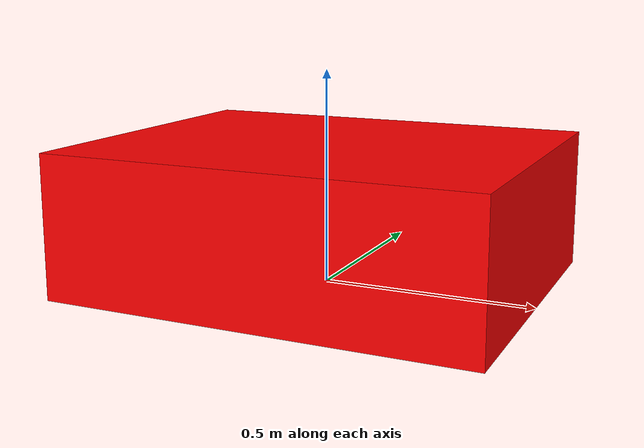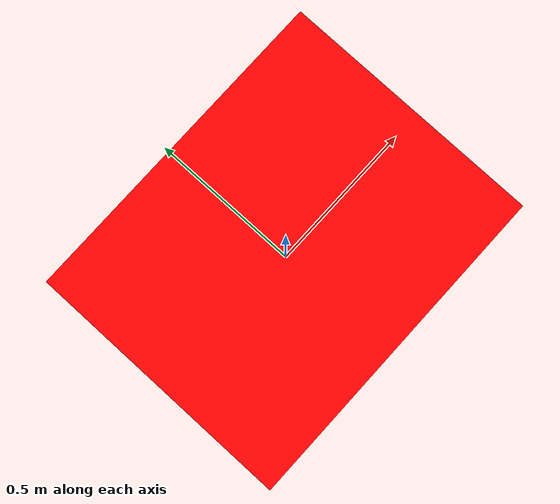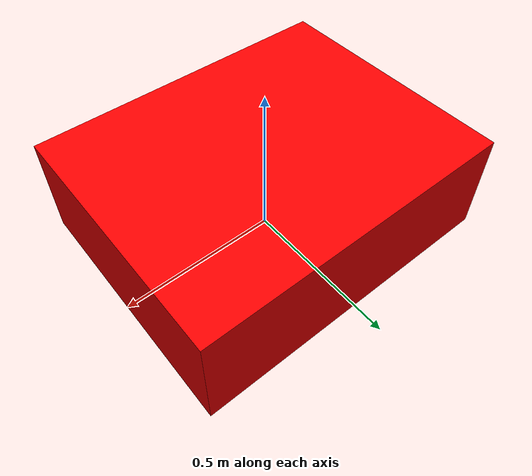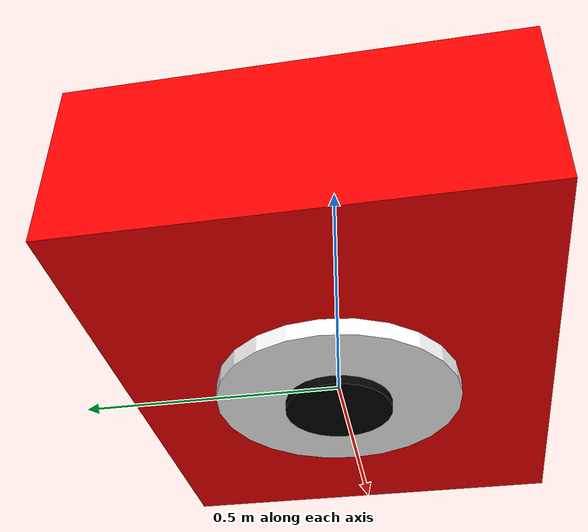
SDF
<?xml version="1.6"?>
<sdf version="1.6">
  <model name="justbaked">
    <link name="base_link">
      <!-- ...existing code... -->
    </link>

    <!-- Chassis -->
    <link name="chassis">
      <visual name="chassis_visual">
        <pose>0 0 0.16666665 0 0 0</pose>
        <geometry>
          <box>
            <size>1.0 0.8 0.3333333</size>
          </box>
        </geometry>
        <material>
          <ambient>1.0 0.0 0.0 0.9</ambient>
          <diffuse>1.0 0.0 0.0 0.9</diffuse>
        </material>
      </visual>
      <collision name="chassis_collision">
        <pose>0 0 0.05 0 0 0</pose>
        <geometry>
          <box>
            <size>1.0 1.0 0.3333333</size>
          </box>
        </geometry>
      </collision>
      <inertial>
        <pose>0 0 0.16666665 0 0 0</pose>
        <mass>10.0</mass>
        <inertia>
          <ixx>0.625924</ixx>
          <ixy>0</ixy>
          <ixz>0</ixz>
          <iyy>1.36667</iyy>
          <iyz>0</iyz>
          <izz>0.92592</izz>
        </inertia>
      </inertial>
    </link>
    <joint name="chassis_joint" type="fixed">
      <parent>base_link</parent>
      <child>chassis</child>
      <pose>-0.1 0 0.1 0 0 0</pose>
    </joint>

    <!-- Front left wheel -->
    <link name="front_left_wheel">
      <visual name="front_left_wheel_visual">
        <pose>0 0 0 0 0 0</pose>
        <geometry>
          <cylinder>
            <radius>0.1</radius>
            <length>0.1</length>
          </cylinder>
        </geometry>
        <material>
          <ambient>0.0 0.0 0.0 1.0</ambient>
          <diffuse>0.0 0.0 0.0 1.0</diffuse>
        </material>
      </visual>
      <inertial>
        <pose>0 0 0 0 0 0</pose>
        <mass>1.0</mass>
        <inertia>
          <ixx>0.003333333</ixx>
          <ixy>0</ixy>
          <ixz>0</ixz>
          <iyy>0.003333333</iyy>
          <iyz>0</iyz>
          <izz>0.005</izz>
        </inertia>
      </inertial>
    </link>
    <joint name="front_left_wheel_joint" type="revolute">
      <parent>chassis</parent>
      <child>front_left_wheel</child>
      <pose>0.4 0.45 0.05 1.5708 0 0</pose>
      <axis>
        <xyz>0 0 1</xyz>
      </axis>
    </joint>

    <!-- Rear left wheel -->
    <link name="rear_left_wheel">
      <visual name="rear_left_wheel_visual">
        <pose>0 0 0 0 0 0</pose>
        <geometry>
          <cylinder>
            <radius>0.1</radius>
            <length>0.1</length>
          </cylinder>
        </geometry>
        <material>
          <ambient>0.0 0.0 0.0 1.0</ambient>
          <diffuse>0.0 0.0 0.0 1.0</diffuse>
        </material>
      </visual>
      <inertial>
        <pose>0 0 0 0 0 0</pose>
        <mass>1.0</mass>
        <inertia>
          <ixx>0.003333333</ixx>
          <ixy>0</ixy>
          <ixz>0</ixz>
          <iyy>0.003333333</iyy>
          <iyz>0</iyz>
          <izz>0.005</izz>
        </inertia>
      </inertial>
    </link>
    <joint name="rear_left_wheel_joint" type="revolute">
      <parent>chassis</parent>
      <child>rear_left_wheel</child>
      <pose>-0.4 0.45 0.05 1.5708 0 0</pose>
      <axis>
        <xyz>0 0 1</xyz>
      </axis>
    </joint>

    <!-- Front right wheel -->
    <link name="front_right_wheel">
      <visual name="front_right_wheel_visual">
        <pose>0 0 0 0 0 0</pose>
        <geometry>
          <cylinder>
            <radius>0.1</radius>
            <length>0.1</length>
          </cylinder>
        </geometry>
        <material>
          <ambient>0.0 0.0 0.0 1.0</ambient>
          <diffuse>0.0 0.0 0.0 1.0</diffuse>
        </material>
      </visual>
      <inertial>
        <pose>0 0 0 0 0 0</pose>
        <mass>1.0</mass>
        <inertia>
          <ixx>0.003333333</ixx>
          <ixy>0</ixy>
          <ixz>0</ixz>
          <iyy>0.003333333</iyy>
          <iyz>0</iyz>
          <izz>0.005</izz>
        </inertia>
      </inertial>
    </link>
    <joint name="front_right_wheel_joint" type="revolute">
      <parent>chassis</parent>
      <child>front_right_wheel</child>
      <pose>0.4 -0.45 0.05 1.5708 0 0</pose>
      <axis>
        <xyz>0 0 1</xyz>
      </axis>
    </joint>

    <!-- Rear right wheel -->
    <link name="rear_right_wheel">
      <visual name="rear_right_wheel_visual">
        <pose>0 0 0 0 0 0</pose>
        <geometry>
          <cylinder>
            <radius>0.1</radius>
            <length>0.1</length>
          </cylinder>
        </geometry>
        <material>
          <ambient>0.0 0.0 0.0 1.0</ambient>
          <diffuse>0.0 0.0 0.0 1.0</diffuse>
        </material>
      </visual>
      <inertial>
        <pose>0 0 0 0 0 0</pose>
        <mass>1.0</mass>
        <inertia>
          <ixx>0.003333333</ixx>
          <ixy>0</ixy>
          <ixz>0</ixz>
          <iyy>0.003333333</iyy>
          <iyz>0</iyz>
          <izz>0.005</izz>
        </inertia>
      </inertial>
    </link>
    <joint name="rear_right_wheel_joint" type="revolute">
      <parent>chassis</parent>
      <child>rear_right_wheel</child>
      <pose>-0.4 -0.45 0.05 1.5708 0 0</pose>
      <axis>
        <xyz>0 0 1</xyz>
      </axis>
    </joint>

    <!-- Lidar -->
    <link name="lidar">
      <visual name="lidar_visual">
        <pose>0 0 0 0 0 0</pose>
        <geometry>
          <cylinder>
            <radius>0.229659</radius>
            <length>0.0656168</length>
          </cylinder>
        </geometry>
        <material>
          <ambient>1.0 1.0 1.0 1.0</ambient>
          <diffuse>1.0 1.0 1.0 1.0</diffuse>
        </material>
      </visual>
      <inertial>
        <pose>0 0 0 0 0 0</pose>
        <mass>1.0</mass>
        <inertia>
          <ixx>0.013544611</ixx>
          <ixy>0</ixy>
          <ixz>0</ixz>
          <iyy>0.013544611</iyy>
          <iyz>0</iyz>
          <izz>0.026371628</izz>
        </inertia>
      </inertial>
    </link>
    <joint name="lidar_joint" type="revolute">
      <parent>chassis</parent>
      <child>lidar</child>
      <pose>0 0 0.3661417 0 0 0</pose>
      <axis>
        <xyz>0 0 1</xyz>
      </axis>
    </joint>
  </model>
</sdf>
